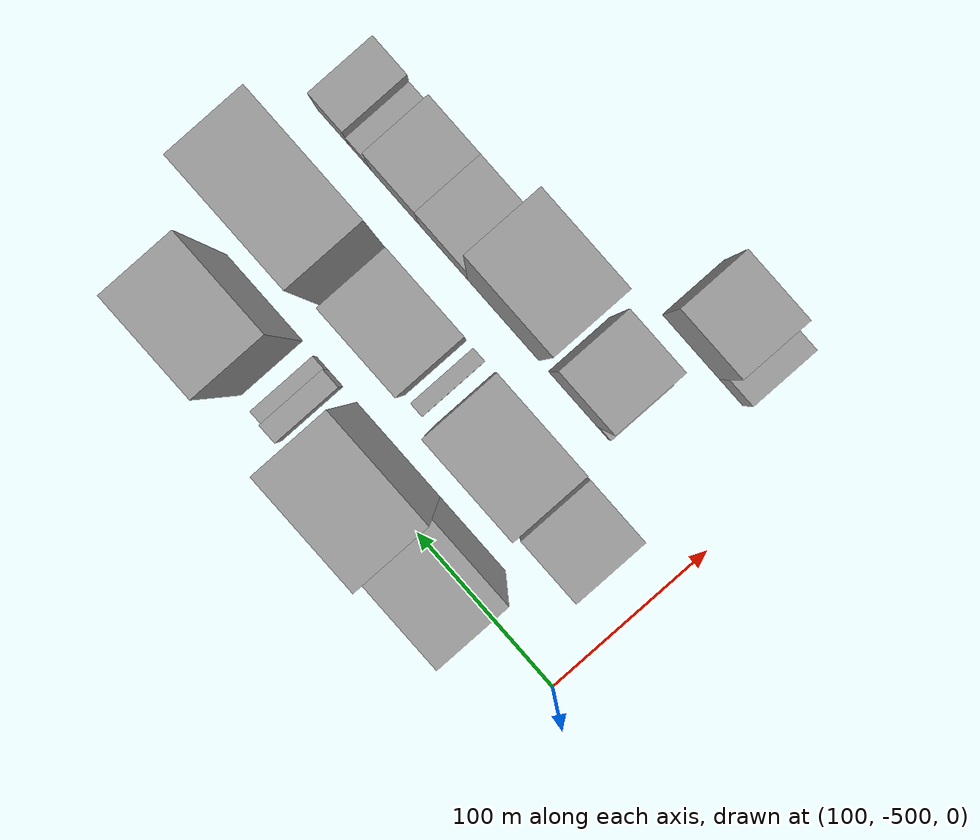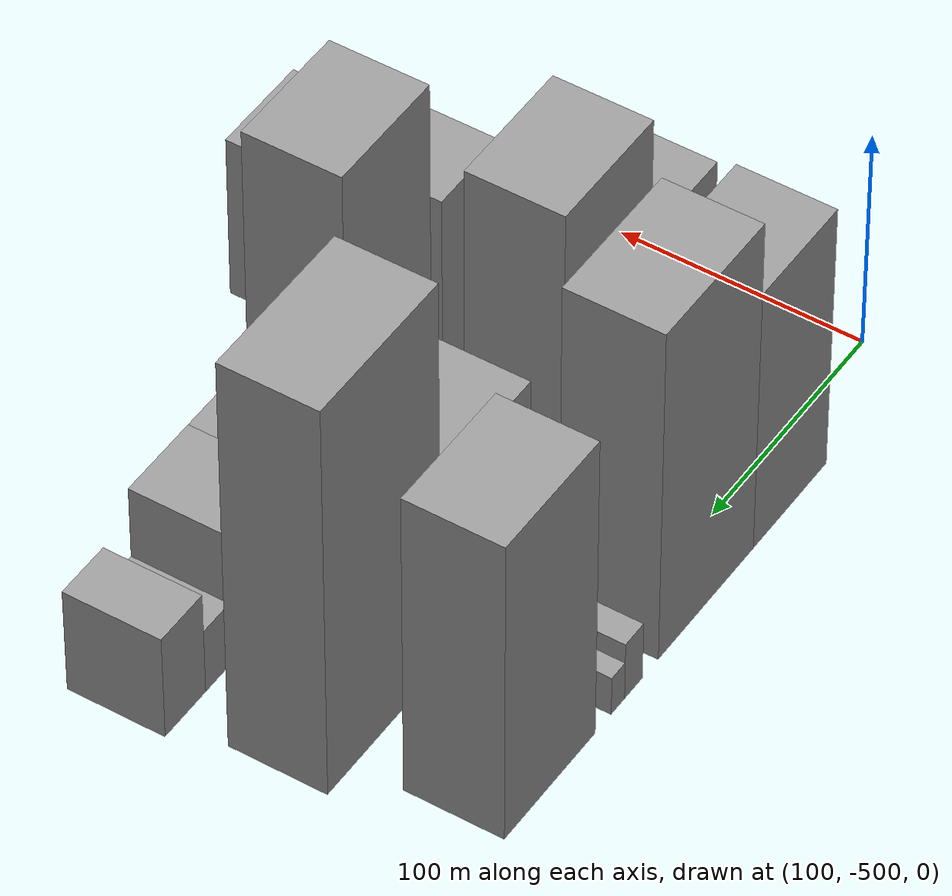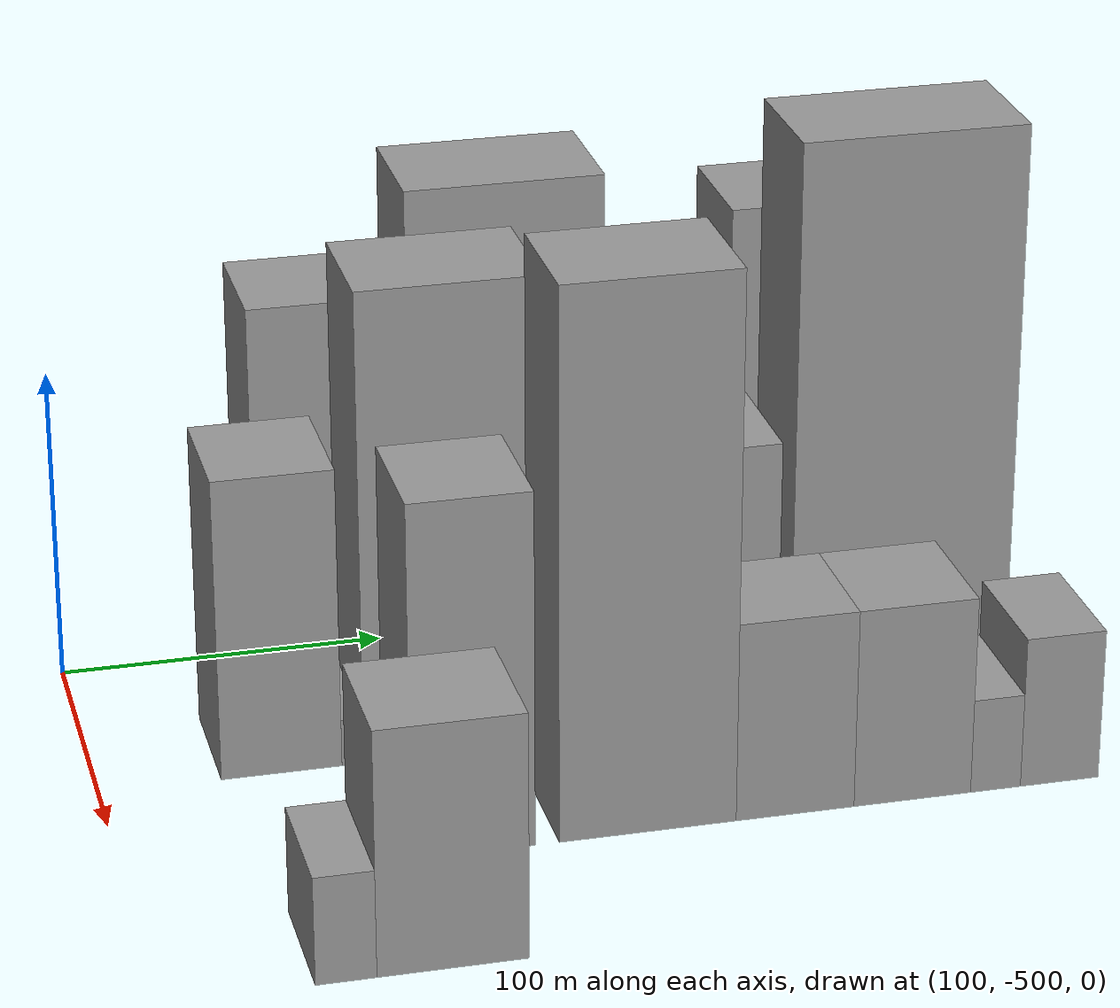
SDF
<sdf version="1.6">
 <world name="default">
  <model name="building_17">
   <static>1</static>
   <pose>100.0000 -418.1977 0 0.000000 0.000000 0.000000</pose>
   <link name="link">
    <pose>0 0 61.50 0 0 0</pose>
    <collision name="collision"><geometry><box><size>40.0000 48.2844 123.0000</size></box></geometry></collision>
    <visual name="visual">
     <cast_shadows>0</cast_shadows>
     <geometry><box><size>40.0000 48.2844 123.0000</size></box></geometry>
     <material>
      <script>
       <uri>model://grey_wall/materials/scripts</uri>
       <uri>model://grey_wall/materials/textures</uri>
       <name>vrc/grey_wall</name>
      </script>
     </material>
    </visual>
   </link>
  </model>
  <model name="building_18">
   <static>1</static>
   <pose>100.0000 -363.4000 0 0.000000 0.000000 0.000000</pose>
   <link name="link">
    <pose>0 0 78.00 0 0 0</pose>
    <collision name="collision"><geometry><box><size>40.0000 61.3111 156.0000</size></box></geometry></collision>
    <visual name="visual">
     <cast_shadows>0</cast_shadows>
     <geometry><box><size>40.0000 61.3111 156.0000</size></box></geometry>
     <material>
      <script>
       <uri>model://grey_wall/materials/scripts</uri>
       <uri>model://grey_wall/materials/textures</uri>
       <name>vrc/grey_wall</name>
      </script>
     </material>
    </visual>
   </link>
  </model>
  <model name="building_19">
   <static>1</static>
   <pose>100.0000 -317.0317 0 0.000000 0.000000 0.000000</pose>
   <link name="link">
    <pose>0 0 13.50 0 0 0</pose>
    <collision name="collision"><geometry><box><size>40.0000 11.4255 27.0000</size></box></geometry></collision>
    <visual name="visual">
     <cast_shadows>0</cast_shadows>
     <geometry><box><size>40.0000 11.4255 27.0000</size></box></geometry>
     <material>
      <script>
       <uri>model://grey_wall/materials/scripts</uri>
       <uri>model://grey_wall/materials/textures</uri>
       <name>vrc/grey_wall</name>
      </script>
     </material>
    </visual>
   </link>
  </model>
  <model name="building_20">
   <static>1</static>
   <pose>100.0000 -307.1301 0 0.000000 0.000000 0.000000</pose>
   <link name="link">
    <pose>0 0 9.00 0 0 0</pose>
    <collision name="collision"><geometry><box><size>40.0000 8.3779 18.0000</size></box></geometry></collision>
    <visual name="visual">
     <cast_shadows>0</cast_shadows>
     <geometry><box><size>40.0000 8.3779 18.0000</size></box></geometry>
     <material>
      <script>
       <uri>model://grey_wall/materials/scripts</uri>
       <uri>model://grey_wall/materials/textures</uri>
       <name>vrc/grey_wall</name>
      </script>
     </material>
    </visual>
   </link>
  </model>
  <model name="building_21">
   <static>1</static>
   <pose>100.0000 -264.8392 0 0.000000 0.000000 0.000000</pose>
   <link name="link">
    <pose>0 0 70.50 0 0 0</pose>
    <collision name="collision"><geometry><box><size>40.0000 56.2038 141.0000</size></box></geometry></collision>
    <visual name="visual">
     <cast_shadows>0</cast_shadows>
     <geometry><box><size>40.0000 56.2038 141.0000</size></box></geometry>
     <material>
      <script>
       <uri>model://grey_wall/materials/scripts</uri>
       <uri>model://grey_wall/materials/textures</uri>
       <name>vrc/grey_wall</name>
      </script>
     </material>
    </visual>
   </link>
  </model>
  <model name="building_71">
   <static>1</static>
   <pose>160.0000 -445.7979 0 0.000000 0.000000 0.000000</pose>
   <link name="link">
    <pose>0 0 48.00 0 0 0</pose>
    <collision name="collision"><geometry><box><size>40.0000 36.1104 96.0000</size></box></geometry></collision>
    <visual name="visual">
     <cast_shadows>0</cast_shadows>
     <geometry><box><size>40.0000 36.1104 96.0000</size></box></geometry>
     <material>
      <script>
       <uri>model://grey_wall/materials/scripts</uri>
       <uri>model://grey_wall/materials/textures</uri>
       <name>vrc/grey_wall</name>
      </script>
     </material>
    </visual>
   </link>
  </model>
  <model name="building_72">
   <static>1</static>
   <pose>160.0000 -424.4760 0 0.000000 0.000000 0.000000</pose>
   <link name="link">
    <pose>0 0 7.50 0 0 0</pose>
    <collision name="collision"><geometry><box><size>40.0000 6.5333 15.0000</size></box></geometry></collision>
    <visual name="visual">
     <cast_shadows>0</cast_shadows>
     <geometry><box><size>40.0000 6.5333 15.0000</size></box></geometry>
     <material>
      <script>
       <uri>model://grey_wall/materials/scripts</uri>
       <uri>model://grey_wall/materials/textures</uri>
       <name>vrc/grey_wall</name>
      </script>
     </material>
    </visual>
   </link>
  </model>
  <model name="building_73">
   <static>1</static>
   <pose>160.0000 -393.7702 0 0.000000 0.000000 0.000000</pose>
   <link name="link">
    <pose>0 0 75.00 0 0 0</pose>
    <collision name="collision"><geometry><box><size>40.0000 54.8784 150.0000</size></box></geometry></collision>
    <visual name="visual">
     <cast_shadows>0</cast_shadows>
     <geometry><box><size>40.0000 54.8784 150.0000</size></box></geometry>
     <material>
      <script>
       <uri>model://grey_wall/materials/scripts</uri>
       <uri>model://grey_wall/materials/textures</uri>
       <name>vrc/grey_wall</name>
      </script>
     </material>
    </visual>
   </link>
  </model>
  <model name="building_74">
   <static>1</static>
   <pose>160.0000 -355.0325 0 0.000000 0.000000 0.000000</pose>
   <link name="link">
    <pose>0 0 9.00 0 0 0</pose>
    <collision name="collision"><geometry><box><size>40.0000 8.5969 18.0000</size></box></geometry></collision>
    <visual name="visual">
     <cast_shadows>0</cast_shadows>
     <geometry><box><size>40.0000 8.5969 18.0000</size></box></geometry>
     <material>
      <script>
       <uri>model://grey_wall/materials/scripts</uri>
       <uri>model://grey_wall/materials/textures</uri>
       <name>vrc/grey_wall</name>
      </script>
     </material>
    </visual>
   </link>
  </model>
  <model name="building_75">
   <static>1</static>
   <pose>160.0000 -319.7827 0 0.000000 0.000000 0.000000</pose>
   <link name="link">
    <pose>0 0 45.00 0 0 0</pose>
    <collision name="collision"><geometry><box><size>40.0000 51.9028 90.0000</size></box></geometry></collision>
    <visual name="visual">
     <cast_shadows>0</cast_shadows>
     <geometry><box><size>40.0000 51.9028 90.0000</size></box></geometry>
     <material>
      <script>
       <uri>model://grey_wall/materials/scripts</uri>
       <uri>model://grey_wall/materials/textures</uri>
       <name>vrc/grey_wall</name>
      </script>
     </material>
    </visual>
   </link>
  </model>
  <model name="building_76">
   <static>1</static>
   <pose>160.0000 -255.5633 0 0.000000 0.000000 0.000000</pose>
   <link name="link">
    <pose>0 0 91.50 0 0 0</pose>
    <collision name="collision"><geometry><box><size>40.0000 68.5361 183.0000</size></box></geometry></collision>
    <visual name="visual">
     <cast_shadows>0</cast_shadows>
     <geometry><box><size>40.0000 68.5361 183.0000</size></box></geometry>
     <material>
      <script>
       <uri>model://grey_wall/materials/scripts</uri>
       <uri>model://grey_wall/materials/textures</uri>
       <name>vrc/grey_wall</name>
      </script>
     </material>
    </visual>
   </link>
  </model>
  <model name="building_125">
   <static>1</static>
   <pose>220.0000 -423.5385 0 0.000000 0.000000 0.000000</pose>
   <link name="link">
    <pose>0 0 9.00 0 0 0</pose>
    <collision name="collision"><geometry><box><size>40.0000 8.0913 18.0000</size></box></geometry></collision>
    <visual name="visual">
     <cast_shadows>0</cast_shadows>
     <geometry><box><size>40.0000 8.0913 18.0000</size></box></geometry>
     <material>
      <script>
       <uri>model://grey_wall/materials/scripts</uri>
       <uri>model://grey_wall/materials/textures</uri>
       <name>vrc/grey_wall</name>
      </script>
     </material>
    </visual>
   </link>
  </model>
  <model name="building_126">
   <static>1</static>
   <pose>220.0000 -401.4052 0 0.000000 0.000000 0.000000</pose>
   <link name="link">
    <pose>0 0 55.50 0 0 0</pose>
    <collision name="collision"><geometry><box><size>40.0000 36.1752 111.0000</size></box></geometry></collision>
    <visual name="visual">
     <cast_shadows>0</cast_shadows>
     <geometry><box><size>40.0000 36.1752 111.0000</size></box></geometry>
     <material>
      <script>
       <uri>model://grey_wall/materials/scripts</uri>
       <uri>model://grey_wall/materials/textures</uri>
       <name>vrc/grey_wall</name>
      </script>
     </material>
    </visual>
   </link>
  </model>
  <model name="building_127">
   <static>1</static>
   <pose>220.0000 -350.0558 0 0.000000 0.000000 0.000000</pose>
   <link name="link">
    <pose>0 0 85.50 0 0 0</pose>
    <collision name="collision"><geometry><box><size>40.0000 52.5236 171.0000</size></box></geometry></collision>
    <visual name="visual">
     <cast_shadows>0</cast_shadows>
     <geometry><box><size>40.0000 52.5236 171.0000</size></box></geometry>
     <material>
      <script>
       <uri>model://grey_wall/materials/scripts</uri>
       <uri>model://grey_wall/materials/textures</uri>
       <name>vrc/grey_wall</name>
      </script>
     </material>
    </visual>
   </link>
  </model>
  <model name="building_128">
   <static>1</static>
   <pose>220.0000 -306.0187 0 0.000000 0.000000 0.000000</pose>
   <link name="link">
    <pose>0 0 31.50 0 0 0</pose>
    <collision name="collision"><geometry><box><size>40.0000 35.5505 63.0000</size></box></geometry></collision>
    <visual name="visual">
     <cast_shadows>0</cast_shadows>
     <geometry><box><size>40.0000 35.5505 63.0000</size></box></geometry>
     <material>
      <script>
       <uri>model://grey_wall/materials/scripts</uri>
       <uri>model://grey_wall/materials/textures</uri>
       <name>vrc/grey_wall</name>
      </script>
     </material>
    </visual>
   </link>
  </model>
  <model name="building_129">
   <static>1</static>
   <pose>220.0000 -270.4274 0 0.000000 0.000000 0.000000</pose>
   <link name="link">
    <pose>0 0 31.50 0 0 0</pose>
    <collision name="collision"><geometry><box><size>40.0000 35.6322 63.0000</size></box></geometry></collision>
    <visual name="visual">
     <cast_shadows>0</cast_shadows>
     <geometry><box><size>40.0000 35.6322 63.0000</size></box></geometry>
     <material>
      <script>
       <uri>model://grey_wall/materials/scripts</uri>
       <uri>model://grey_wall/materials/textures</uri>
       <name>vrc/grey_wall</name>
      </script>
     </material>
    </visual>
   </link>
  </model>
  <model name="building_130">
   <static>1</static>
   <pose>220.0000 -244.9289 0 0.000000 0.000000 0.000000</pose>
   <link name="link">
    <pose>0 0 15.00 0 0 0</pose>
    <collision name="collision"><geometry><box><size>40.0000 15.3647 30.0000</size></box></geometry></collision>
    <visual name="visual">
     <cast_shadows>0</cast_shadows>
     <geometry><box><size>40.0000 15.3647 30.0000</size></box></geometry>
     <material>
      <script>
       <uri>model://grey_wall/materials/scripts</uri>
       <uri>model://grey_wall/materials/textures</uri>
       <name>vrc/grey_wall</name>
      </script>
     </material>
    </visual>
   </link>
  </model>
  <model name="building_131">
   <static>1</static>
   <pose>220.0000 -225.1979 0 0.000000 0.000000 0.000000</pose>
   <link name="link">
    <pose>0 0 24.00 0 0 0</pose>
    <collision name="collision"><geometry><box><size>40.0000 24.0973 48.0000</size></box></geometry></collision>
    <visual name="visual">
     <cast_shadows>0</cast_shadows>
     <geometry><box><size>40.0000 24.0973 48.0000</size></box></geometry>
     <material>
      <script>
       <uri>model://grey_wall/materials/scripts</uri>
       <uri>model://grey_wall/materials/textures</uri>
       <name>vrc/grey_wall</name>
      </script>
     </material>
    </visual>
   </link>
  </model>
  <model name="building_170">
   <static>1</static>
   <pose>280.0000 -449.9408 0 0.000000 0.000000 0.000000</pose>
   <link name="link">
    <pose>0 0 16.50 0 0 0</pose>
    <collision name="collision"><geometry><box><size>40.0000 16.8819 33.0000</size></box></geometry></collision>
    <visual name="visual">
     <cast_shadows>0</cast_shadows>
     <geometry><box><size>40.0000 16.8819 33.0000</size></box></geometry>
     <material>
      <script>
       <uri>model://grey_wall/materials/scripts</uri>
       <uri>model://grey_wall/materials/textures</uri>
       <name>vrc/grey_wall</name>
      </script>
     </material>
    </visual>
   </link>
  </model>
  <model name="building_171">
   <static>1</static>
   <pose>280.0000 -420.3963 0 0.000000 0.000000 0.000000</pose>
   <link name="link">
    <pose>0 0 37.50 0 0 0</pose>
    <collision name="collision"><geometry><box><size>40.0000 42.2070 75.0000</size></box></geometry></collision>
    <visual name="visual">
     <cast_shadows>0</cast_shadows>
     <geometry><box><size>40.0000 42.2070 75.0000</size></box></geometry>
     <material>
      <script>
       <uri>model://grey_wall/materials/scripts</uri>
       <uri>model://grey_wall/materials/textures</uri>
       <name>vrc/grey_wall</name>
      </script>
     </material>
    </visual>
   </link>
  </model>
 </world>
</sdf>
